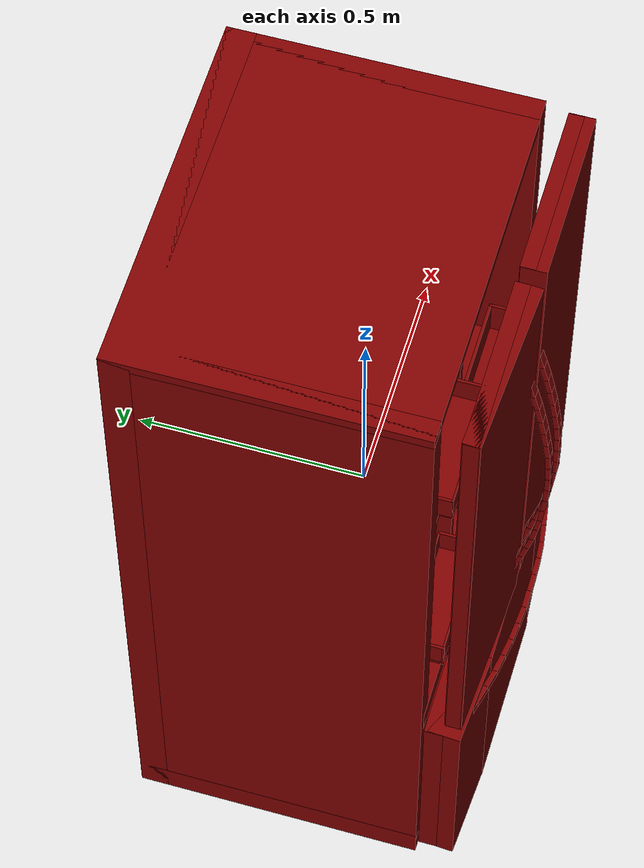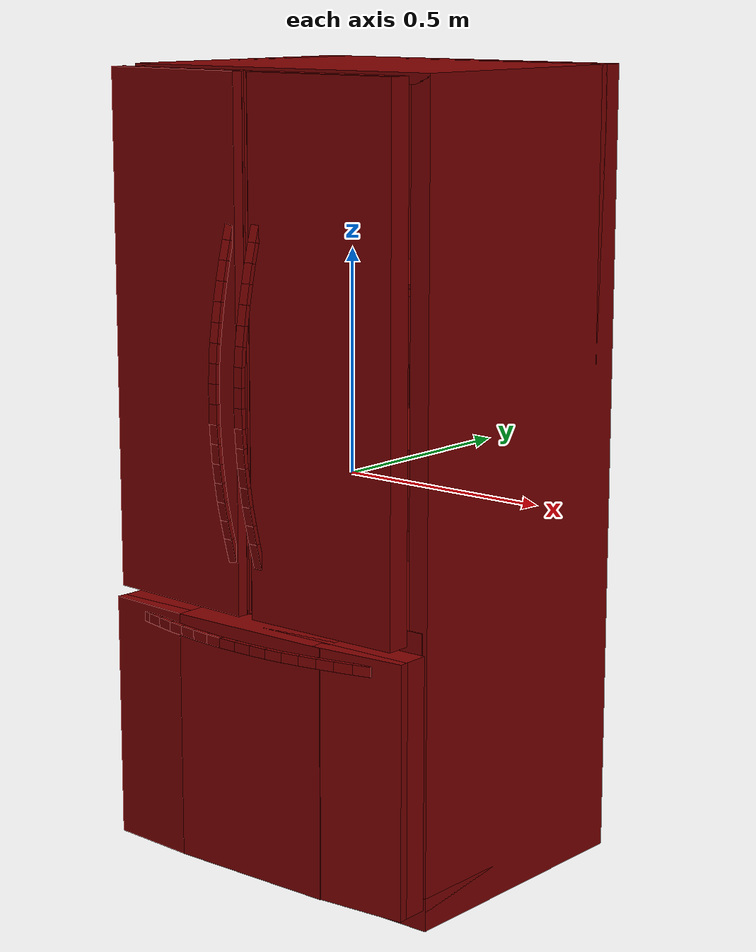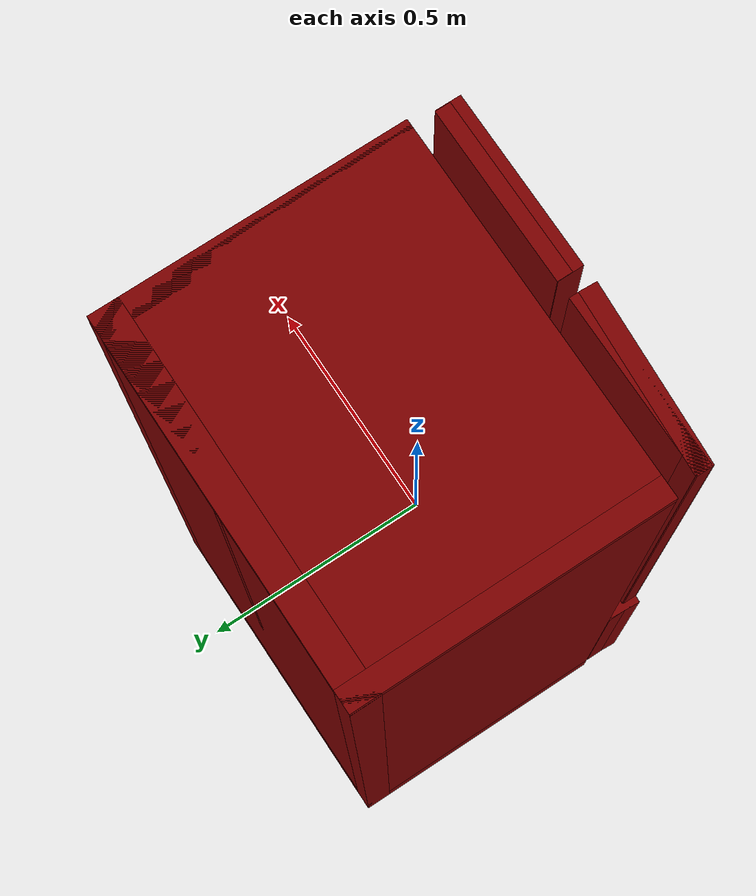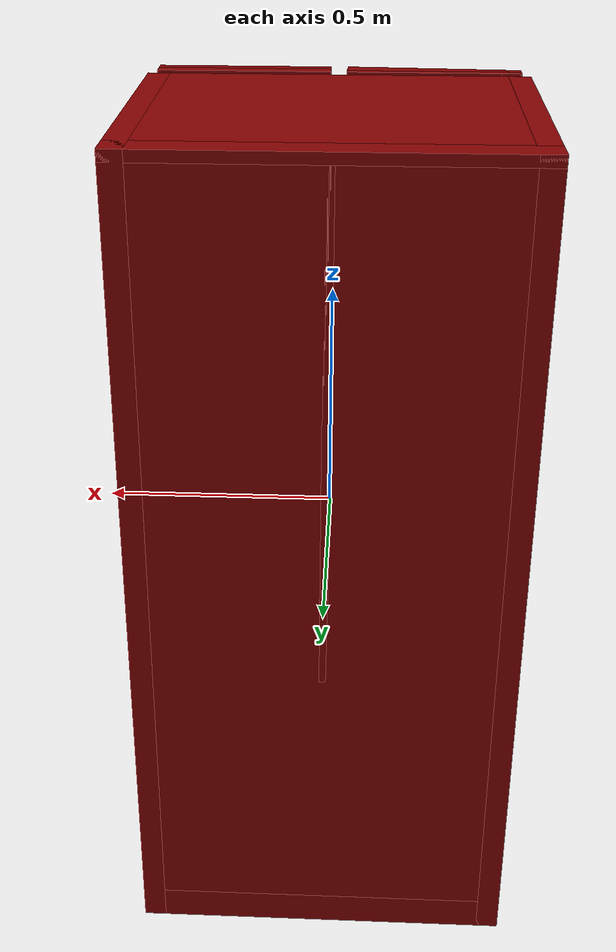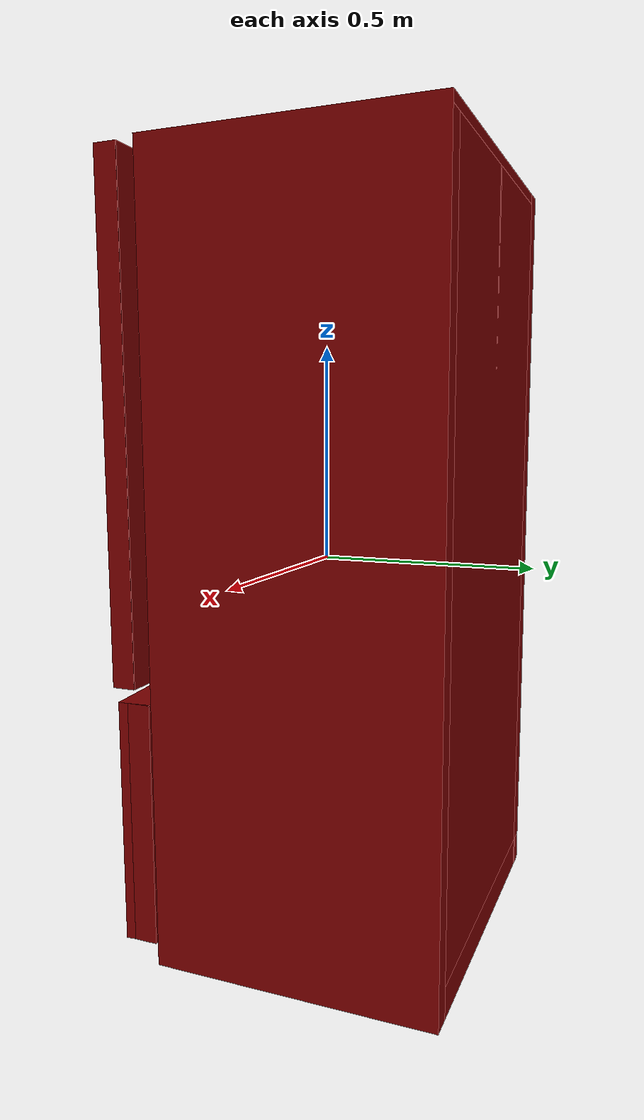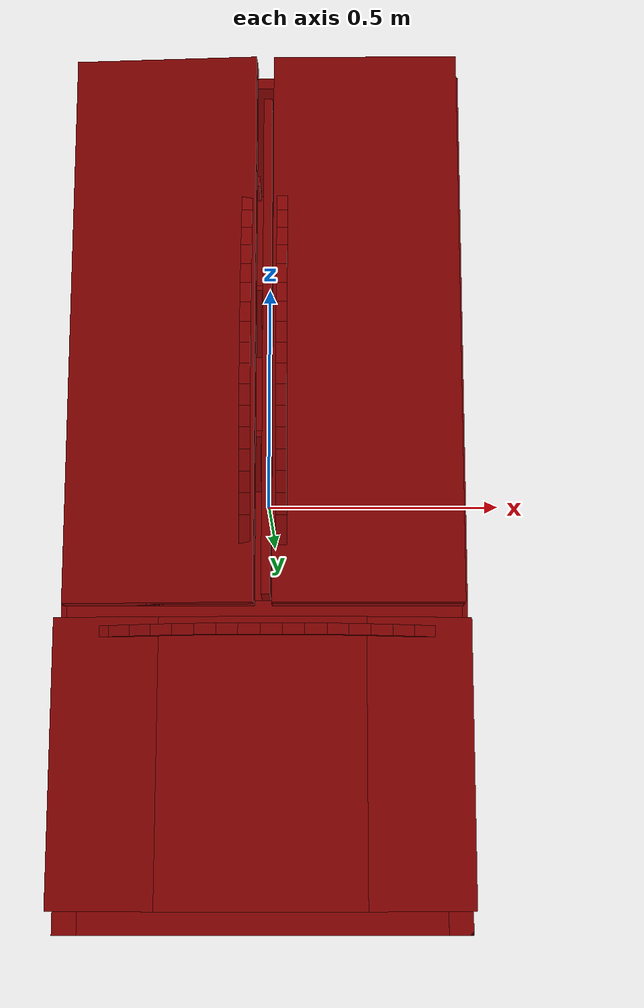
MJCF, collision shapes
<mujoco model="model">
  <compiler angle="radian"/>
  <asset>
    <mesh file="visuals/Body001.obj" name="Body001_vis"/>
    <mesh file="visuals/Body001_Clear.obj" name="Body001_Clear_vis"/>
    <mesh file="visuals/Door001.obj" name="Door001_vis"/>
    <mesh file="visuals/Door001_Clear.obj" name="Door001_Clear_vis"/>
    <mesh file="visuals/Door002.obj" name="Door002_vis"/>
    <mesh file="visuals/Door002_Clear.obj" name="Door002_Clear_vis"/>
    <mesh file="visuals/Drawer001.obj" name="Drawer001_vis"/>
    <mesh file="visuals/Drawer002.obj" name="Drawer002_vis"/>
    <texture file="visuals/T_BC001.png" name="Body001_material" type="2d"/>
    <material name="Body001_material" rgba="1 1 1 1.0" texture="Body001_material" shininess="0.141421377658844" specular="1"/>
    <texture file="visuals/T_BC001.png" name="Body001_Clear_material" type="2d"/>
    <material name="Body001_Clear_material" rgba="1 1 1 0.10000000149011612" texture="Body001_Clear_material" shininess="0.5" specular="0.3103448502657381"/>
    <texture file="visuals/T_BC001.png" name="Door001_material" type="2d"/>
    <material name="Door001_material" rgba="1 1 1 1.0" texture="Door001_material" shininess="0.141421377658844" specular="1"/>
    <texture file="visuals/T_BC001.png" name="Door001_Clear_material" type="2d"/>
    <material name="Door001_Clear_material" rgba="1 1 1 0.10000000149011612" texture="Door001_Clear_material" shininess="0.5" specular="0.3103448502657381"/>
    <texture file="visuals/T_BC001.png" name="Door002_material" type="2d"/>
    <material name="Door002_material" rgba="1 1 1 1.0" texture="Door002_material" shininess="0.141421377658844" specular="1"/>
    <texture file="visuals/T_BC001.png" name="Door002_Clear_material" type="2d"/>
    <material name="Door002_Clear_material" rgba="1 1 1 0.10000000149011612" texture="Door002_Clear_material" shininess="0.5" specular="0.3103448502657381"/>
    <texture file="visuals/T_BC001.png" name="Drawer001_material" type="2d"/>
    <material name="Drawer001_material" rgba="1 1 1 1.0" texture="Drawer001_material" shininess="0.141421377658844" specular="1"/>
    <texture file="visuals/T_BC001.png" name="Drawer002_material" type="2d"/>
    <material name="Drawer002_material" rgba="1 1 1 1.0" texture="Drawer002_material" shininess="0.141421377658844" specular="1"/>
  </asset>
  <default>
    <default class="visual">
      <geom conaffinity="0" contype="0" group="1" type="mesh"/>
    </default>
    <default class="collision">
      <geom group="0" rgba="0.5 0 0 0.5"/>
    </default>
    <default class="spawn">
      <geom group="0" rgba="1 1 1 0.5" contype="0" conaffinity="0"/>
      <site group="0" rgba="1 1 1 0.5"/>
    </default>
    <default class="region">
      <geom group="1" conaffinity="0" contype="0" rgba="0 1 0 0"/>
    </default>
  </default>
  <worldbody>
    <body>
      <body name="object">
        <geom mesh="Body001_vis" type="mesh" solimp="0.998 0.998 0.001" solref="0.001 1" density="100" friction="0.95 0.3 0.1" class="visual" material="Body001_material"/>
        <geom class="collision" type="box" pos="-0.384503 0.080648 0.000000" size="0.024028195068240166 0.3275413513183594 0.8931799530982971" quat="1.0 0.0 0.0 0.0"/>
        <geom class="collision" type="box" pos="0.384440 0.080648 0.000000" size="0.024028195068240166 0.3275413513183594 0.8931799530982971" quat="1.0 0.0 0.0 0.0"/>
        <geom class="collision" type="box" pos="-0.000032 0.080648 0.881417" size="0.40849995613098145 0.3275413513183594 0.011762959882616997" quat="1.0 0.0 0.0 0.0"/>
        <geom class="collision" type="box" pos="-0.000032 0.080648 -0.856417" size="0.40849995613098145 0.3275413513183594 0.03676270693540573" quat="1.0 0.0 0.0 0.0"/>
        <geom class="collision" type="box" pos="-0.000154 0.104597 0.336755" size="0.009217653423547745 0.3035922646522522 0.556424617767334" quat="1.0 0.0 0.0 0.0"/>
        <geom class="collision" type="box" pos="-0.000032 0.105715 0.118197" size="0.39680585265159607 0.3005240261554718 0.006698716897517443" quat="1.0 0.0 0.0 0.0"/>
        <geom class="collision" type="box" pos="-0.000032 0.116632 0.454328" size="0.39680588245391846 0.2661880850791931 0.004725380335003138" quat="1.0 0.0 0.0 0.0"/>
        <geom class="collision" type="box" pos="-0.000032 0.376456 0.000000" size="0.40849998593330383 0.03173326700925827 0.8931800127029419" quat="1.0 0.0 0.0 0.0"/>
        <geom class="collision" type="box" pos="-0.174765 0.221181 0.840328" size="0.1422676146030426 0.04597456753253937 0.012506820261478424" quat="1.0 0.0 0.0 0.0"/>
        <geom class="collision" type="box" pos="-0.000032 0.078555 -0.268366" size="0.39680585265159607 0.32768431305885315 0.026900677010416985" quat="1.0 0.0 0.0 0.0"/>
        <geom class="collision" type="box" pos="0.347607 0.107075 0.413639" size="0.0034027781803160906 0.23800313472747803 0.03809480741620064" quat="1.0 0.0 0.0 0.0"/>
        <geom class="collision" type="box" pos="0.347607 0.107075 0.074971" size="0.0034027781803160906 0.23800313472747803 0.03809479624032974" quat="1.0 0.0 0.0 0.0"/>
        <geom class="collision" type="box" pos="0.010688 0.107075 0.413639" size="0.003402791917324066 0.23800313472747803 0.03809480741620064" quat="1.0 0.0 0.0 0.0"/>
        <geom class="collision" type="box" pos="0.010688 0.107075 0.074971" size="0.003402791917324066 0.23800313472747803 0.03809479624032974" quat="1.0 0.0 0.0 0.0"/>
        <geom class="collision" type="box" pos="-0.350521 0.107075 0.413639" size="0.0034028056543320417 0.23800313472747803 0.03809480741620064" quat="1.0 0.0 0.0 0.0"/>
        <geom class="collision" type="box" pos="-0.350521 0.107075 0.074971" size="0.0034028056543320417 0.23800313472747803 0.03809479624032974" quat="1.0 0.0 0.0 0.0"/>
        <geom class="collision" type="box" pos="-0.010353 0.107075 0.413639" size="0.003402791917324066 0.23800313472747803 0.03809480741620064" quat="1.0 0.0 0.0 0.0"/>
        <geom class="collision" type="box" pos="-0.010212 0.107075 0.074971" size="0.003402791917324066 0.23800313472747803 0.03809479624032974" quat="1.0 0.0 0.0 0.0"/>
        <body name="Body001_Clear">
          <geom mesh="Body001_Clear_vis" type="mesh" solimp="0.998 0.998 0.001" solref="0.001 1" density="100" friction="0.95 0.3 0.1" class="visual" material="Body001_Clear_material"/>
        </body>
        <body name="Door001">
          <joint axis="0.0 0.0 -1.0" pos="-0.352454 -0.299758 0.315720" limited="true" name="Door001_joint" range="0.0 1.5707963267948966" type="hinge" damping="1" frictionloss="1" armature=".01" stiffness="0.05"/>
          <geom mesh="Door001_vis" type="mesh" solimp="0.998 0.998 0.001" solref="0.001 1" density="100" friction="0.95 0.3 0.1" class="visual" material="Door001_material"/>
          <geom class="collision" type="box" pos="-0.206380 -0.312246 0.315232" size="0.18872188031673431 0.016137875616550446 0.574165940284729" quat="1.0 0.0 0.0 0.0"/>
          <geom class="collision" type="box" pos="-0.206163 -0.323552 0.315232" size="0.1881105750799179 0.018970558419823647 0.574165940284729" quat="0.9995800256729126 0.0 0.0 -0.028978072106838226"/>
          <geom class="collision" type="box" pos="-0.036145 -0.350201 0.565813" size="0.010972114279866219 0.00530815776437521 0.021547187119722366" quat="0.9904153347015381 -0.1381213217973709 1.2564709722919205e-17 -1.772449942944432e-18"/>
          <geom class="collision" type="box" pos="-0.036145 -0.361439 0.524480" size="0.010972114279866219 0.00530815776437521 0.021547187119722366" quat="0.9916549921035767 -0.12892001867294312 1.4622432338846943e-17 -1.3709747307145228e-18"/>
          <geom class="collision" type="box" pos="-0.036145 -0.371444 0.483314" size="0.010972114279866219 0.00530815776437521 0.021547187119722366" quat="0.99416583776474 -0.10786249488592148 1.9317453247416275e-17 -4.535648433539046e-19"/>
          <geom class="collision" type="box" pos="-0.036145 -0.380142 0.441373" size="0.010972113348543644 0.00530815776437521 0.021547185257077217" quat="0.9951243996620178 -0.09862761944532394 2.1370361672178955e-17 -5.183029384608882e-20"/>
          <geom class="collision" type="box" pos="-0.036145 -0.387891 0.398920" size="0.010972114279866219 0.00530815776437521 0.021547187119722366" quat="0.9966456294059753 -0.08183827251195908 2.5093064857916704e-17 6.776010253971808e-19"/>
          <geom class="collision" type="box" pos="-0.036145 -0.394385 0.356582" size="0.010972114279866219 0.00530815776437521 0.021547187119722366" quat="0.997362494468689 -0.07258143275976181 2.7140341837069123e-17 1.0792589411448875e-18"/>
          <geom class="collision" type="box" pos="-0.036145 -0.399345 0.314392" size="0.010972113348543644 0.00530815776437521 0.02154718153178692" quat="0.999150812625885 -0.04120326414704323 3.4052464867631685e-17 2.438083422636772e-18"/>
          <geom class="collision" type="box" pos="-0.036145 -0.401608 0.271921" size="0.010972114279866219 0.005308159161359072 0.021547187119722366" quat="0.9999302625656128 -0.011807713657617569 4.0489236978662074e-17 3.707266341146285e-18"/>
          <geom class="collision" type="box" pos="-0.036145 -0.402560 0.229336" size="0.010972375981509686 0.0053514400497078896 0.02155780792236328" quat="1.0 0.0 0.0 0.0"/>
          <geom class="collision" type="box" pos="-0.036145 -0.402147 0.186504" size="0.010972370393574238 0.005664233583956957 0.021632131189107895" quat="1.0 0.0 0.0 0.0"/>
          <geom class="collision" type="box" pos="-0.036145 -0.400243 0.144067" size="0.010972114279866219 0.00530815776437521 0.021547187119722366" quat="0.9992116689682007 0.039699986577034 5.167806575585855e-17 5.922365858876525e-18"/>
          <geom class="collision" type="box" pos="-0.036145 -0.396625 0.101566" size="0.010972113348543644 0.00530815776437521 0.021547187119722366" quat="0.9989241361618042 0.046373751014471054 5.311952392618326e-17 6.2085600110622155e-18"/>
          <geom class="collision" type="box" pos="-0.036145 -0.391387 0.059057" size="0.010972114279866219 0.00530815776437521 0.021547187119722366" quat="0.9974129796028137 0.07188394665718079 5.861125873098406e-17 7.300764742383864e-18"/>
          <geom class="collision" type="box" pos="-0.036145 -0.384752 0.016741" size="0.010972114279866219 0.00530815776437521 0.021547188982367516" quat="0.9967026114463806 0.08114124089479446 6.059718041538097e-17 7.696428390425129e-18"/>
          <geom class="collision" type="box" pos="-0.036145 -0.376698 -0.024968" size="0.010972114279866219 0.00530815776437521 0.021547187119722366" quat="0.9936604499816895 0.1124228686094284 6.72801711075439e-17 9.030717867768078e-18"/>
          <geom class="collision" type="box" pos="-0.036145 -0.366939 -0.066492" size="0.010972114279866219 0.00530815776437521 0.021547187119722366" quat="0.9928873181343079 0.11905772238969803 6.869211547361271e-17 9.313184330523298e-18"/>
          <geom class="collision" type="box" pos="-0.036145 -0.353977 -0.115830" size="0.010972114279866219 0.005308158230036497 0.0298470351845026" quat="0.9912081956863403 0.1323114037513733 7.150681919222855e-17 9.876868213308784e-18"/>
          <body name="Door001_Clear">
            <geom mesh="Door001_Clear_vis" type="mesh" solimp="0.998 0.998 0.001" solref="0.001 1" density="100" friction="0.95 0.3 0.1" class="visual" material="Door001_Clear_material"/>
            <geom class="collision" type="box" pos="-0.195491 -0.227462 0.501742" size="0.13503436744213104 0.04419774189591408 0.0030021562706679106" quat="1.0 0.0 0.0 0.0"/>
            <geom class="collision" type="box" pos="-0.193248 -0.269463 0.532173" size="0.1368005871772766 0.0019272464560344815 0.02927577495574951" quat="1.0 0.0 0.0 0.0"/>
            <geom class="collision" type="box" pos="-0.193248 -0.184735 0.532174" size="0.1368005871772766 0.0019272464560344815 0.02927577495574951" quat="1.0 0.0 0.0 0.0"/>
            <geom class="collision" type="box" pos="-0.328637 -0.226976 0.532173" size="0.003059645416215062 0.04351834952831268 0.029275773093104362" quat="1.0 0.0 0.0 0.0"/>
            <geom class="collision" type="box" pos="-0.057678 -0.226976 0.532173" size="0.003059645416215062 0.04351836442947388 0.029275773093104362" quat="1.0 0.0 0.0 0.0"/>
            <geom class="collision" type="box" pos="-0.194385 -0.226384 -0.107634" size="0.13648226857185364 0.04358048737049103 0.0038079756777733564" quat="1.0 0.0 0.0 0.0"/>
            <geom class="collision" type="box" pos="-0.194385 -0.267045 -0.076231" size="0.13648226857185364 0.0019272188656032085 0.030200975015759468" quat="1.0 0.0 0.0 0.0"/>
            <geom class="collision" type="box" pos="-0.194385 -0.184735 -0.076231" size="0.13648226857185364 0.0019272197969257832 0.030200975015759468" quat="1.0 0.0 0.0 0.0"/>
            <geom class="collision" type="box" pos="-0.327411 -0.226632 -0.076231" size="0.0031848519574850798 0.04317488893866539 0.030200975015759468" quat="1.0 0.0 0.0 0.0"/>
            <geom class="collision" type="box" pos="-0.061236 -0.226632 -0.076231" size="0.0031848519574850798 0.04317488893866539 0.030200975015759468" quat="1.0 0.0 0.0 0.0"/>
            <geom class="collision" type="box" pos="-0.081773 -0.208865 0.212972" size="0.03909606859087944 0.054356884211301804 0.0030021562706679106" quat="1.0 0.0 0.0 0.0"/>
            <geom class="collision" type="box" pos="-0.081124 -0.260520 0.243404" size="0.0396076925098896 0.0023702364414930344 0.02927624247968197" quat="1.0 0.0 0.0 0.0"/>
            <geom class="collision" type="box" pos="-0.081124 -0.156318 0.243404" size="0.0396076925098896 0.0023702355101704597 0.029276223853230476" quat="1.0 0.0 0.0 0.0"/>
            <geom class="collision" type="box" pos="-0.120323 -0.208268 0.243404" size="0.0008858577348291874 0.05352110043168068 0.02927577495574951" quat="1.0 0.0 0.0 0.0"/>
            <geom class="collision" type="box" pos="-0.041872 -0.208268 0.243404" size="0.0008858577348291874 0.05352111533284187 0.02927577495574951" quat="1.0 0.0 0.0 0.0"/>
          </body>
        </body>
        <body name="Door002">
          <joint axis="0.0 0.0 1.0" pos="0.345535 -0.300738 0.315720" limited="true" name="Door002_joint" range="0.0 1.5707963267948966" type="hinge" damping="1" frictionloss="1" armature=".01" stiffness="0.05"/>
          <geom mesh="Door002_vis" type="mesh" solimp="0.998 0.998 0.001" solref="0.001 1" density="100" friction="0.95 0.3 0.1" class="visual" material="Door002_material"/>
          <geom class="collision" type="box" pos="0.206153 -0.312246 0.315232" size="0.18843480944633484 0.016141250729560852 0.5741810202598572" quat="1.0 0.0 0.0 0.0"/>
          <geom class="collision" type="box" pos="0.206426 -0.324266 0.315232" size="0.18945306539535522 0.027019372209906578 0.574165940284729" quat="1.0 0.0 0.0 0.0"/>
          <geom class="collision" type="box" pos="0.035807 -0.350201 0.565813" size="0.010972115211188793 0.00530815776437521 0.021547187119722366" quat="0.9904153347015381 -0.1381213217973709 1.2564709722919205e-17 -1.772449942944432e-18"/>
          <geom class="collision" type="box" pos="0.035807 -0.361439 0.524480" size="0.010972115211188793 0.00530815776437521 0.021547187119722366" quat="0.9916549921035767 -0.12892001867294312 1.4622432338846943e-17 -1.3709747307145228e-18"/>
          <geom class="collision" type="box" pos="0.035807 -0.371444 0.483314" size="0.010972115211188793 0.00530815776437521 0.021547187119722366" quat="0.99416583776474 -0.10786249488592148 1.9317453247416275e-17 -4.535648433539046e-19"/>
          <geom class="collision" type="box" pos="0.035807 -0.380142 0.441373" size="0.010972114279866219 0.00530815776437521 0.021547185257077217" quat="0.9951243996620178 -0.09862761944532394 2.1370361672178955e-17 -5.183029384608882e-20"/>
          <geom class="collision" type="box" pos="0.035807 -0.387891 0.398920" size="0.010972115211188793 0.00530815776437521 0.021547187119722366" quat="0.9966456294059753 -0.08183827251195908 2.5093064857916704e-17 6.776010253971808e-19"/>
          <geom class="collision" type="box" pos="0.035807 -0.394385 0.356582" size="0.010972115211188793 0.00530815776437521 0.021547187119722366" quat="0.997362494468689 -0.07258143275976181 2.7140341837069123e-17 1.0792589411448875e-18"/>
          <geom class="collision" type="box" pos="0.035807 -0.399345 0.314392" size="0.010972114279866219 0.00530815776437521 0.02154718153178692" quat="0.999150812625885 -0.04120326414704323 3.4052464867631685e-17 2.438083422636772e-18"/>
          <geom class="collision" type="box" pos="0.035807 -0.401608 0.271921" size="0.010972113348543644 0.005308159161359072 0.021547187119722366" quat="0.9999302625656128 -0.011807713657617569 4.0489236978662074e-17 3.707266341146285e-18"/>
          <geom class="collision" type="box" pos="0.035807 -0.402560 0.229336" size="0.010972392745316029 0.0053514400497078896 0.02155780792236328" quat="1.0 0.0 0.0 0.0"/>
          <geom class="collision" type="box" pos="0.035807 -0.402147 0.186504" size="0.010972388088703156 0.005664233583956957 0.021632131189107895" quat="1.0 0.0 0.0 0.0"/>
          <geom class="collision" type="box" pos="0.035807 -0.400243 0.144067" size="0.010972115211188793 0.00530815776437521 0.021547187119722366" quat="0.9992116689682007 0.039699986577034 5.167806575585855e-17 5.922365858876525e-18"/>
          <geom class="collision" type="box" pos="0.035807 -0.396625 0.101566" size="0.010972114279866219 0.00530815776437521 0.021547187119722366" quat="0.9989241361618042 0.046373751014471054 5.311952392618326e-17 6.2085600110622155e-18"/>
          <geom class="collision" type="box" pos="0.035807 -0.391387 0.059057" size="0.010972115211188793 0.00530815776437521 0.021547187119722366" quat="0.9974129796028137 0.07188394665718079 5.861125873098406e-17 7.300764742383864e-18"/>
          <geom class="collision" type="box" pos="0.035807 -0.384752 0.016741" size="0.010972115211188793 0.00530815776437521 0.021547188982367516" quat="0.9967026114463806 0.08114124089479446 6.059718041538097e-17 7.696428390425129e-18"/>
          <geom class="collision" type="box" pos="0.035807 -0.376698 -0.024968" size="0.010972113348543644 0.00530815776437521 0.021547187119722366" quat="0.9936604499816895 0.1124228686094284 6.72801711075439e-17 9.030717867768078e-18"/>
          <geom class="collision" type="box" pos="0.035807 -0.366939 -0.066492" size="0.010972115211188793 0.00530815776437521 0.021547187119722366" quat="0.9928873181343079 0.11905772238969803 6.869211547361271e-17 9.313184330523298e-18"/>
          <geom class="collision" type="box" pos="0.035807 -0.353977 -0.115830" size="0.010972115211188793 0.005308158230036497 0.0298470351845026" quat="0.9912081956863403 0.1323114037513733 7.150681919222855e-17 9.876868213308784e-18"/>
          <body name="Door002_Clear">
            <geom mesh="Door002_Clear_vis" type="mesh" solimp="0.998 0.998 0.001" solref="0.001 1" density="100" friction="0.95 0.3 0.1" class="visual" material="Door002_Clear_material"/>
            <geom class="collision" type="box" pos="0.175392 -0.253695 0.213500" size="0.13111671805381775 0.07016801834106445 0.004389540757983923" quat="1.0 0.0 0.0 0.0"/>
            <geom class="collision" type="box" pos="0.175392 -0.320375 0.257995" size="0.13111671805381775 0.0030595946591347456 0.042804423719644547" quat="1.0 0.0 0.0 0.0"/>
            <geom class="collision" type="box" pos="0.175392 -0.185863 0.257995" size="0.13111671805381775 0.0030595960561186075 0.04280443862080574" quat="1.0 0.0 0.0 0.0"/>
            <geom class="collision" type="box" pos="0.047596 -0.252924 0.257995" size="0.0030596007127314806 0.06908955425024033 0.04280497133731842" quat="1.0 0.0 0.0 0.0"/>
            <geom class="collision" type="box" pos="0.303306 -0.252924 0.257995" size="0.003059601876884699 0.06908955425024033 0.04280497133731842" quat="1.0 0.0 0.0 0.0"/>
            <geom class="collision" type="box" pos="0.175392 -0.251985 -0.109849" size="0.13111671805381775 0.06918639689683914 0.004389540757983923" quat="1.0 0.0 0.0 0.0"/>
            <geom class="collision" type="box" pos="0.175392 -0.316537 -0.079862" size="0.13111671805381775 0.0030596130527555943 0.03021976351737976" quat="1.0 0.0 0.0 0.0"/>
            <geom class="collision" type="box" pos="0.175392 -0.185863 -0.079862" size="0.13111671805381775 0.003059613984078169 0.03021976351737976" quat="1.0 0.0 0.0 0.0"/>
            <geom class="collision" type="box" pos="0.047596 -0.252378 -0.079862" size="0.0030596451833844185 0.06854353845119476 0.03021976351737976" quat="1.0 0.0 0.0 0.0"/>
            <geom class="collision" type="box" pos="0.308863 -0.251493 -0.081642" size="0.0030596063006669283 0.06854236125946045 0.03153375908732414" quat="1.0 0.0 0.0 0.0"/>
            <geom class="collision" type="box" pos="0.175392 -0.268314 -0.079862" size="0.13111671805381775 0.003059616545215249 0.03021976351737976" quat="1.0 0.0 0.0 0.0"/>
          </body>
        </body>
        <body name="Drawer001">
          <joint axis="0.0 -1.0 0.0" pos="-0.000000 -0.065099 -0.565882" limited="true" name="Drawer001_joint" range="0.0 0.4" type="slide" damping="1" frictionloss="1" armature=".01" stiffness="0.05"/>
          <geom mesh="Drawer001_vis" type="mesh" solimp="0.998 0.998 0.001" solref="0.001 1" density="100" friction="0.95 0.3 0.1" class="visual" material="Drawer001_material"/>
          <geom class="collision" type="box" pos="0.313514 -0.339238 -0.314838" size="0.010972114279866219 0.00530815776437521 0.021547187119722366" quat="0.7012061476707458 -0.09116015583276749 0.701205849647522 0.0911601185798645"/>
          <geom class="collision" type="box" pos="0.272348 -0.349244 -0.314838" size="0.010972114279866219 0.00530815776437521 0.021547187119722366" quat="0.7029815316200256 -0.07627030462026596 0.7029812335968018 0.07627026736736298"/>
          <geom class="collision" type="box" pos="0.230407 -0.357942 -0.314838" size="0.010972114279866219 0.00530815776437521 0.021547187119722366" quat="0.7036592364311218 -0.06974031776189804 0.703659176826477 0.06974031031131744"/>
          <geom class="collision" type="box" pos="0.187953 -0.365690 -0.314838" size="0.010972114279866219 0.00530815776437521 0.021547187119722366" quat="0.7047349214553833 -0.05786837637424469 0.7047348618507385 0.05786837264895439"/>
          <geom class="collision" type="box" pos="0.145615 -0.372185 -0.314838" size="0.010972114279866219 0.00530815776437521 0.021547185257077217" quat="0.7052419185638428 -0.0513228140771389 0.7052416205406189 0.05132279172539711"/>
          <geom class="collision" type="box" pos="0.103426 -0.377144 -0.314838" size="0.010972114279866219 0.00530815776437521 0.02154718153178692" quat="0.7065063118934631 -0.029135126620531082 0.7065062522888184 0.029135124757885933"/>
          <geom class="collision" type="box" pos="0.060955 -0.379407 -0.314838" size="0.010972114279866219 0.00530815776437521 0.021547187119722366" quat="0.7070575952529907 -0.008349291980266571 0.7070573568344116 0.008349289186298847"/>
          <geom class="collision" type="box" pos="0.018369 -0.380359 -0.314838" size="0.021558038890361786 0.005351439584046602 0.010972116142511368" quat="1.0 0.0 0.0 0.0"/>
          <geom class="collision" type="box" pos="-0.024462 -0.379946 -0.314838" size="0.021632350981235504 0.005664234980940819 0.010972116142511368" quat="1.0 0.0 0.0 0.0"/>
          <geom class="collision" type="box" pos="-0.066899 -0.378042 -0.314838" size="0.010972114279866219 0.00530815776437521 0.021547187119722366" quat="0.706549346446991 0.028072167187929153 0.7065492868423462 -0.028072165325284004"/>
          <geom class="collision" type="box" pos="-0.109400 -0.374424 -0.314838" size="0.010972114279866219 0.00530815776437521 0.021547190845012665" quat="0.7063460946083069 0.0327911376953125 0.7063459753990173 -0.0327911302447319"/>
          <geom class="collision" type="box" pos="-0.151909 -0.369187 -0.314838" size="0.010972114279866219 0.005308158230036497 0.021547187119722366" quat="0.7052775025367737 0.05082954466342926 0.7052775025367737 -0.05082954466342926"/>
          <geom class="collision" type="box" pos="-0.194225 -0.362551 -0.314838" size="0.010972114279866219 0.00530815776437521 0.021547187119722366" quat="0.7047752141952515 0.05737549066543579 0.7047751545906067 -0.05737548694014549"/>
          <geom class="collision" type="box" pos="-0.235935 -0.354497 -0.314838" size="0.010972114279866219 0.005308158230036497 0.021547187119722366" quat="0.7026240825653076 0.07949487864971161 0.7026240229606628 -0.07949487119913101"/>
          <geom class="collision" type="box" pos="-0.277458 -0.344739 -0.314838" size="0.010972114279866219 0.00530815776437521 0.021547187119722366" quat="0.7020773887634277 0.08418658375740051 0.702077329158783 -0.08418657630681992"/>
          <geom class="collision" type="box" pos="-0.326797 -0.331776 -0.314838" size="0.010972114279866219 0.005308158230036497 0.0298470426350832" quat="0.700890064239502 0.09355829656124115 0.7008900046348572 -0.09355829656124115"/>
          <geom class="collision" type="box" pos="0.000000 -0.298196 -0.565594" size="0.2023966759443283 0.049179647117853165 0.278927743434906" quat="1.0 0.0 0.0 0.0"/>
          <geom class="collision" type="box" pos="0.293620 -0.301116 -0.565594" size="0.11244698613882065 0.037334736436605453 0.278927743434906" quat="0.9992759823799133 0.0 0.0 0.0380464568734169"/>
          <geom class="collision" type="box" pos="-0.300570 -0.303326 -0.565594" size="0.10665188729763031 0.037310946732759476 0.278927743434906" quat="0.9994935989379883 0.0 0.0 -0.03181987628340721"/>
          <geom class="collision" type="box" pos="0.000000 -0.282349 -0.565594" size="0.40690967440605164 0.029282167553901672 0.278927743434906" quat="1.0 0.0 0.0 0.0"/>
          <geom class="collision" type="box" pos="0.001992 -0.227077 -0.565594" size="0.3540191054344177 0.02291768789291382 0.22295355796813965" quat="1.0 0.0 0.0 0.0"/>
          <geom class="collision" type="box" pos="0.320267 -0.021546 -0.460938" size="0.025592977181077003 0.2772807776927948 0.10664261132478714" quat="1.0 0.0 0.0 0.0"/>
          <geom class="collision" type="box" pos="-0.318586 -0.021546 -0.460938" size="0.2772807776927948 0.025481708347797394 0.1066417470574379" quat="0.7071067094802856 0.0 0.0 -0.7071068286895752"/>
          <geom class="collision" type="box" pos="-0.278087 -0.021546 -0.669085" size="0.025592967867851257 0.21326176822185516 0.1066417470574379" quat="1.0 0.0 0.0 0.0"/>
          <geom class="collision" type="box" pos="0.279329 -0.021546 -0.669085" size="0.025592967867851257 0.21326176822185516 0.1066417470574379" quat="1.0 0.0 0.0 0.0"/>
          <geom class="collision" type="box" pos="0.000785 0.229390 -0.478005" size="0.3002127707004547 0.025593047961592674 0.11242091655731201" quat="1.0 0.0 0.0 0.0"/>
          <geom class="collision" type="box" pos="0.000785 0.169228 -0.663313" size="0.30021369457244873 0.01441675890237093 0.11797244846820831" quat="3.184155161761737e-07 -4.890158833426028e-10 0.16600175201892853 0.9861254692077637"/>
          <geom class="collision" type="box" pos="-0.006463 -0.022451 -0.759126" size="0.21326173841953278 0.008600353263318539 0.2704109847545624" quat="0.5091145038604736 0.4907163977622986 -0.5091143846511841 -0.49071621894836426"/>
        </body>
        <body name="Drawer002">
          <joint axis="0.0 -1.0 0.0" pos="0.000940 0.073268 -0.396407" limited="true" name="Drawer002_joint" range="0.0 0.45" type="slide" damping="1" frictionloss="1" armature=".01" stiffness="0.05"/>
          <geom mesh="Drawer002_vis" type="mesh" solimp="0.998 0.998 0.001" solref="0.001 1" density="100" friction="0.95 0.3 0.1" class="visual" material="Drawer002_material"/>
          <geom class="collision" type="box" pos="0.000000 -0.087805 -0.389288" size="0.28965258598327637 0.008395758457481861 0.060735393315553665" quat="1.0 0.0 0.0 0.0"/>
          <geom class="collision" type="box" pos="-0.268008 0.052744 -0.353197" size="0.01740308105945587 0.14952941238880157 0.02314554527401924" quat="1.0 0.0 0.0 0.0"/>
          <geom class="collision" type="box" pos="0.272507 0.052744 -0.353197" size="0.018278812989592552 0.14953012764453888 0.023145534098148346" quat="1.0 0.0 0.0 0.0"/>
          <geom class="collision" type="box" pos="0.001770 0.190007 -0.359831" size="0.2761361002922058 0.01214724313467741 0.008748800493776798" quat="1.0 0.0 0.0 0.0"/>
          <geom class="collision" type="box" pos="0.001770 0.024604 -0.456710" size="0.2761355936527252 0.12095644325017929 0.008748836815357208" quat="1.0 0.0 0.0 0.0"/>
          <geom class="collision" type="box" pos="0.001770 0.154757 -0.411113" size="0.2761361002922058 0.01037431601434946 0.055372271686792374" quat="4.9690360270915335e-08 9.066028638926582e-08 -0.3120264708995819 -0.9500734210014343"/>
          <geom class="collision" type="box" pos="0.282820 0.047701 -0.413513" size="0.010338072665035725 0.13220137357711792 0.037042196840047836" quat="1.0 0.0 0.0 0.0"/>
          <geom class="collision" type="box" pos="-0.275022 0.047701 -0.413513" size="0.010338052175939083 0.13220137357711792 0.037042196840047836" quat="1.0 0.0 0.0 0.0"/>
          <geom class="collision" type="box" pos="0.001641 0.038495 -0.418607" size="0.01033806148916483 0.1234879419207573 0.029012538492679596" quat="1.0 0.0 0.0 0.0"/>
          <geom class="collision" type="box" pos="0.237415 0.018642 -0.410826" size="0.018278727307915688 0.04678335413336754 0.052289098501205444" quat="1.0 0.0 0.0 0.0"/>
          <geom class="collision" type="box" pos="-0.243702 0.018642 -0.410826" size="0.018278727307915688 0.04678337275981903 0.052289124578237534" quat="1.0 0.0 0.0 0.0"/>
        </body>
        <geom class="region" name="reg_main" type="box" pos="0.0 0.030554500000000012 0.0" size="0.408532 0.3776355 0.89318"/>
      </body>
    </body>
  </worldbody>
  <actuator>
    <motor name="Door001_joint_actuator" joint="Door001_joint" gear="50"/>
    <motor name="Door002_joint_actuator" joint="Door002_joint" gear="50"/>
    <motor name="Drawer001_joint_actuator" joint="Drawer001_joint" gear="50"/>
    <motor name="Drawer002_joint_actuator" joint="Drawer002_joint" gear="50"/>
  </actuator>
</mujoco>
